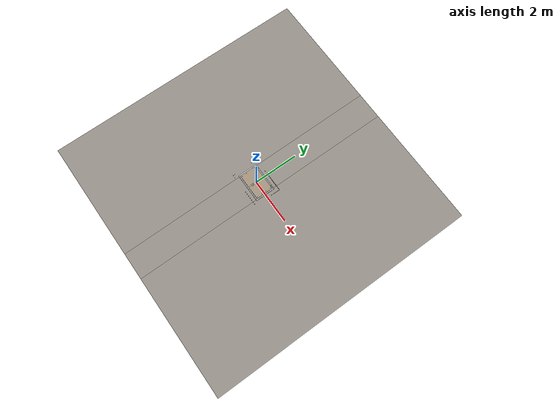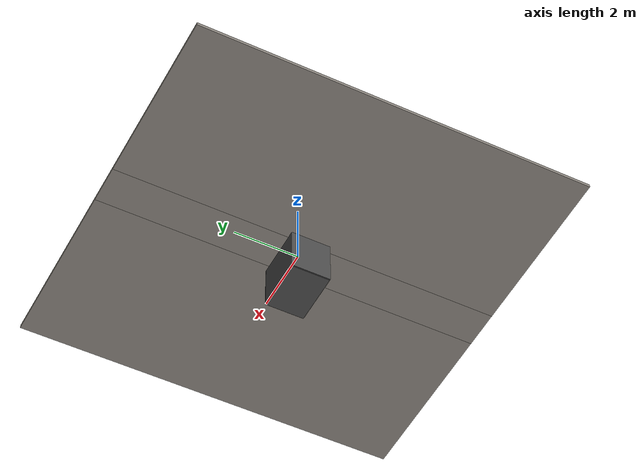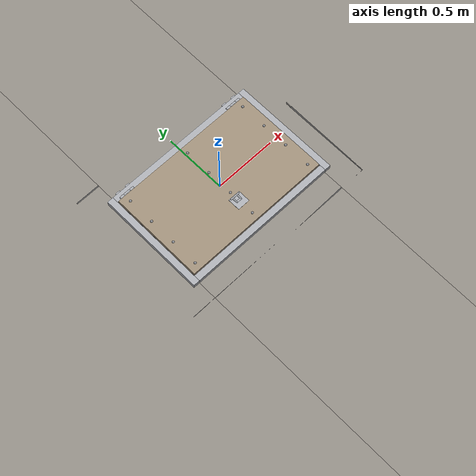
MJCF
<?xml version="1.0" ?>
<mujoco model="db0452_hatch_floor_full">
  <compiler angle="radian" meshdir="../../hardware" texturedir="../../textures" autolimits="true" inertiafromgeom="false"/>
  <option timestep="0.002" integrator="implicitfast" cone="elliptic" impratio="10" noslip_iterations="3">
    <flag multiccd="enable"/>
  </option>
  <size memory="16M"/>
  <default>
    <geom condim="4" solref="0.005 1" solimp="0.95 0.99 0.001"/>
    <joint solreflimit="0.005 1" solimplimit="0.95 0.99 0.001"/>
    <tendon solreflimit="0.005 1"/>
    <equality solref="0.002 1"/>
  </default>
  <visual>
    <headlight ambient="0.4 0.4 0.4" diffuse="0.7 0.7 0.7" specular="0.2 0.2 0.2"/>
    <quality shadowsize="4096"/>
    <map znear="0.01" zfar="60"/>
  </visual>
  <asset>
    <material name="mat_floor" rgba="0.55 0.53 0.5 1" specular="0.2" shininess="0.15" reflectance="0"/>
    <material name="mat_wall" rgba="0.78 0.76 0.7 1" specular="0.2" shininess="0.1" reflectance="0"/>
    <material name="mat_pit" rgba="0.3 0.3 0.3 1" specular="0.2" shininess="0.1" reflectance="0"/>
    <material name="mat_frame" rgba="0.65 0.66 0.68 1" specular="0.74" shininess="0.5" reflectance="0.36"/>
    <material name="mat_leaf" rgba="0.6 0.54 0.46 1" specular="0.2" shininess="0.5" reflectance="0"/>
    <material name="mat_hinge" rgba="0.65 0.66 0.68 1" specular="0.74" shininess="0.5" reflectance="0.36"/>
    <material name="mat_rivet" rgba="0.55 0.56 0.58 1" specular="0.8" shininess="0.55" reflectance="0.4"/>
    <material name="mat_op_steel_galvanized" rgba="0.65 0.66 0.68 1" specular="0.74" shininess="0.5" reflectance="0.36"/>
    <material name="mat_strut" rgba="0.75 0.76 0.77 1" specular="0.8" shininess="0.65" reflectance="0.4"/>
    <texture name="skybox" type="skybox" builtin="gradient" rgb1="0.6 0.7 0.85" rgb2="0.9 0.92 0.95" width="256" height="256"/>
  </asset>
  <worldbody>
    <light name="sun" pos="1.5 -2.5 4" dir="-0.3 0.5 -0.8" directional="true" diffuse="0.8 0.8 0.8" specular="0.3 0.3 0.3" castshadow="true"/>
    <light name="fill" pos="-1.5 2.5 3" dir="0.3 -0.5 -0.7" directional="true" diffuse="0.35 0.35 0.4" castshadow="false"/>
    <camera name="robot_view" pos="0 -1.875 0.91" xyaxes="1 0 0 0 0.26963 0.962964" fovy="52"/>
    <camera name="far_view" pos="0 1.875 0.91" xyaxes="-1 0 0 0 -0.26963 0.962964" fovy="52"/>
    <camera name="iso" pos="1.425 -1.575 1.21" xyaxes="0.741536 0.670913 0 -0.242917 0.268487 0.932151" fovy="46"/>
    <camera name="detail_handle" pos="0.35 -0.7025 0.912" xyaxes="0.843661 0.536875 0 -0.426006 0.669439 0.608581" fovy="38"/>
    <geom name="floor_a" type="box" size="2.6975 6 0.05" pos="-3.3025 0 -0.05" material="mat_floor" group="0" contype="1" conaffinity="1" friction="0.6 0.005 0.0001" density="2400"/>
    <geom name="floor_b" type="box" size="2.6975 6 0.05" pos="3.3025 0 -0.05" material="mat_floor" group="0" contype="1" conaffinity="1" friction="0.6 0.005 0.0001" density="2400"/>
    <geom name="floor_c" type="box" size="0.605 2.8075 0.05" pos="0 -3.1925 -0.05" material="mat_floor" group="0" contype="1" conaffinity="1" friction="0.6 0.005 0.0001" density="2400"/>
    <geom name="floor_d" type="box" size="0.605 2.8075 0.05" pos="0 3.1925 -0.05" material="mat_floor" group="0" contype="1" conaffinity="1" friction="0.6 0.005 0.0001" density="2400"/>
    <geom name="pit_floor" type="box" size="0.805 0.585 0.02" pos="0 0 -1.5" material="mat_pit" group="0" contype="1" conaffinity="1" friction="0.6 0.005 0.0001" density="2400"/>
    <geom name="pit_wall_l" type="box" size="0.01 0.605 0.75" pos="-0.815 0 -0.75" material="mat_pit" group="0" contype="1" conaffinity="1" friction="0.6 0.005 0.0001" density="2400"/>
    <geom name="pit_wall_r" type="box" size="0.01 0.605 0.75" pos="0.815 0 -0.75" material="mat_pit" group="0" contype="1" conaffinity="1" friction="0.6 0.005 0.0001" density="2400"/>
    <geom name="pit_wall_n" type="box" size="0.805 0.01 0.75" pos="0 -0.595 -0.75" material="mat_pit" group="0" contype="1" conaffinity="1" friction="0.6 0.005 0.0001" density="2400"/>
    <geom name="pit_wall_f" type="box" size="0.805 0.01 0.75" pos="0 0.595 -0.75" material="mat_pit" group="0" contype="1" conaffinity="1" friction="0.6 0.005 0.0001" density="2400"/>
    <geom name="curb_l" type="box" size="0.025 0.435 0.02" pos="-0.63 0 0.02" material="mat_frame" group="0" contype="1" conaffinity="1" friction="0.6 0.005 0.0001" density="7850"/>
    <geom name="curb_r" type="box" size="0.025 0.435 0.02" pos="0.63 0 0.02" material="mat_frame" group="0" contype="1" conaffinity="1" friction="0.6 0.005 0.0001" density="7850"/>
    <geom name="curb_n" type="box" size="0.605 0.025 0.02" pos="0 -0.41 0.02" material="mat_frame" group="0" contype="1" conaffinity="1" friction="0.6 0.005 0.0001" density="7850"/>
    <geom name="curb_f" type="box" size="0.605 0.025 0.02" pos="0 0.41 0.02" material="mat_frame" group="0" contype="1" conaffinity="1" friction="0.6 0.005 0.0001" density="7850"/>
    <geom name="hatch_hinge_0_curb_n" type="cylinder" size="0.01 0.018" pos="-0.554 0.395 0.04" quat="0.707107 0 0.707107 0" material="mat_hinge" group="1" contype="0" conaffinity="0" density="7850"/>
    <geom name="hatch_hinge_0_curb_strap_n" type="box" size="0.018 0.032 0.005" pos="-0.554 0.415 0.03" material="mat_hinge" group="1" contype="0" conaffinity="0" density="7850"/>
    <geom name="hatch_hinge_0_curb_p" type="cylinder" size="0.01 0.018" pos="-0.466 0.395 0.04" quat="0.707107 0 0.707107 0" material="mat_hinge" group="1" contype="0" conaffinity="0" density="7850"/>
    <geom name="hatch_hinge_0_curb_strap_p" type="box" size="0.018 0.032 0.005" pos="-0.466 0.415 0.03" material="mat_hinge" group="1" contype="0" conaffinity="0" density="7850"/>
    <geom name="hatch_hinge_1_curb_n" type="cylinder" size="0.01 0.018" pos="0.466 0.395 0.04" quat="0.707107 0 0.707107 0" material="mat_hinge" group="1" contype="0" conaffinity="0" density="7850"/>
    <geom name="hatch_hinge_1_curb_strap_n" type="box" size="0.018 0.032 0.005" pos="0.466 0.415 0.03" material="mat_hinge" group="1" contype="0" conaffinity="0" density="7850"/>
    <geom name="hatch_hinge_1_curb_p" type="cylinder" size="0.01 0.018" pos="0.554 0.395 0.04" quat="0.707107 0 0.707107 0" material="mat_hinge" group="1" contype="0" conaffinity="0" density="7850"/>
    <geom name="hatch_hinge_1_curb_strap_p" type="box" size="0.018 0.032 0.005" pos="0.554 0.415 0.03" material="mat_hinge" group="1" contype="0" conaffinity="0" density="7850"/>
    <site name="approach_point" pos="0 -1.5 0" quat="1 0 0 0" size="0.05" rgba="0.2 0.9 0.2 0.5" group="4"/>
    <site name="goal_point" pos="0 0 -1" quat="1 0 0 0" size="0.05" rgba="0.2 0.9 0.2 0.5" group="4"/>
    <site name="door_plane_center" pos="0 0 0" quat="1 0 0 0" size="0.02" rgba="0.2 0.9 0.2 0.5" group="4"/>
    <body name="hatch" pos="0 0.385 0.04">
      <inertial pos="0.022798 -0.374677 -0.005793" mass="23.4655" quat="0.999852 -0.006654 0.012694 0.0095" diaginertia="1.179098219 3.094983398 4.215615819"/>
      <joint name="hatch_hinge" type="hinge" axis="-1 0 0" pos="0 0.01 0" limited="true" range="0 1.570796" damping="30.784614" frictionloss="0.669024" stiffness="24" springref="-3.333333" armature="0.02"/>
      <geom name="hatch_slab" type="box" size="0.6 0.381 0.016" pos="0 -0.385 0" material="mat_leaf" group="0" contype="1" conaffinity="1" friction="0.6 0.005 0.0001" density="1"/>
      <geom name="hatch_hinge_0" type="cylinder" size="0.01 0.028" pos="-0.51 0.01 0" quat="0.707107 0 0.707107 0" material="mat_hinge" group="1" contype="0" conaffinity="0" density="7850"/>
      <geom name="hatch_hinge_0_strap" type="box" size="0.028 0.023 0.003" pos="-0.51 -0.007 0.005" material="mat_hinge" group="1" contype="0" conaffinity="0" density="7850"/>
      <geom name="hatch_hinge_1" type="cylinder" size="0.01 0.028" pos="0.51 0.01 0" quat="0.707107 0 0.707107 0" material="mat_hinge" group="1" contype="0" conaffinity="0" density="7850"/>
      <geom name="hatch_hinge_1_strap" type="box" size="0.028 0.023 0.003" pos="0.51 -0.007 0.005" material="mat_hinge" group="1" contype="0" conaffinity="0" density="7850"/>
      <geom name="rivet_0_0" type="sphere" size="0.01" pos="-0.54 -0.06 0.016" material="mat_rivet" group="2" contype="0" conaffinity="0" density="7850"/>
      <geom name="rivet_0_1" type="sphere" size="0.01" pos="0 -0.06 0.016" material="mat_rivet" group="2" contype="0" conaffinity="0" density="7850"/>
      <geom name="rivet_0_2" type="sphere" size="0.01" pos="0.54 -0.06 0.016" material="mat_rivet" group="2" contype="0" conaffinity="0" density="7850"/>
      <geom name="rivet_1_0" type="sphere" size="0.01" pos="-0.54 -0.276667 0.016" material="mat_rivet" group="2" contype="0" conaffinity="0" density="7850"/>
      <geom name="rivet_1_1" type="sphere" size="0.01" pos="0 -0.276667 0.016" material="mat_rivet" group="2" contype="0" conaffinity="0" density="7850"/>
      <geom name="rivet_1_2" type="sphere" size="0.01" pos="0.54 -0.276667 0.016" material="mat_rivet" group="2" contype="0" conaffinity="0" density="7850"/>
      <geom name="rivet_2_0" type="sphere" size="0.01" pos="-0.54 -0.493333 0.016" material="mat_rivet" group="2" contype="0" conaffinity="0" density="7850"/>
      <geom name="rivet_2_1" type="sphere" size="0.01" pos="0 -0.493333 0.016" material="mat_rivet" group="2" contype="0" conaffinity="0" density="7850"/>
      <geom name="rivet_2_2" type="sphere" size="0.01" pos="0.54 -0.493333 0.016" material="mat_rivet" group="2" contype="0" conaffinity="0" density="7850"/>
      <geom name="rivet_3_0" type="sphere" size="0.01" pos="-0.54 -0.71 0.016" material="mat_rivet" group="2" contype="0" conaffinity="0" density="7850"/>
      <geom name="rivet_3_1" type="sphere" size="0.01" pos="0 -0.71 0.016" material="mat_rivet" group="2" contype="0" conaffinity="0" density="7850"/>
      <geom name="rivet_3_2" type="sphere" size="0.01" pos="0.54 -0.71 0.016" material="mat_rivet" group="2" contype="0" conaffinity="0" density="7850"/>
      <geom name="ring_recess" type="box" size="0.05 0.05 0.001" pos="0 -0.5775 0.017" material="mat_op_steel_galvanized" group="1" contype="0" conaffinity="0" density="7800"/>
      <geom name="gas_strut" type="cylinder" size="0.01 0.2" pos="0.55 -0.308 -0.15" quat="0.316228 -0.948683 0 0" material="mat_strut" group="1" contype="0" conaffinity="0" density="7900"/>
      <body name="ring" pos="0 -0.5775 0.016">
        <inertial pos="0 0.019982 0.002997" mass="0.2225" quat="-0.058307 0.998299 0 0" diaginertia="0.000076951 0.000083485 0.000154999"/>
        <joint name="ring_hinge" type="hinge" axis="1 0 0" limited="true" range="0 1.392122" damping="0.003476" armature="0.0001"/>
        <geom name="ring_geom" type="capsule" size="0.006 0.035" pos="0 0.04 0.006" quat="0.707107 0 0.707107 0" material="mat_op_steel_galvanized" group="0" contype="1" conaffinity="1" friction="0.6 0.005 0.0001" density="7800"/>
        <geom name="ring_knuckle" type="cylinder" size="0.008 0.022" pos="0 0 0" quat="0.707107 0 0.707107 0" material="mat_op_steel_galvanized" group="1" contype="0" conaffinity="0" density="7800"/>
        <geom name="ring_arm_n" type="capsule" size="0.006 0.02" pos="-0.02 0.02 0.003" quat="0.707107 -0.707107 0 0" material="mat_op_steel_galvanized" group="1" contype="0" conaffinity="0" density="7800"/>
        <geom name="ring_arm_p" type="capsule" size="0.006 0.02" pos="0.02 0.02 0.003" quat="0.707107 -0.707107 0 0" material="mat_op_steel_galvanized" group="1" contype="0" conaffinity="0" density="7800"/>
        <site name="grip_ring" pos="0 0.04 0.006" quat="1 0 0 0" size="0.01" rgba="0.2 0.9 0.2 0.5" group="4"/>
      </body>
    </body>
  </worldbody>
  <sensor>
    <jointpos name="hatch_hinge_pos" joint="hatch_hinge"/>
    <jointvel name="hatch_hinge_vel" joint="hatch_hinge"/>
    <jointpos name="ring_hinge_pos" joint="ring_hinge"/>
    <jointvel name="ring_hinge_vel" joint="ring_hinge"/>
  </sensor>
</mujoco>
